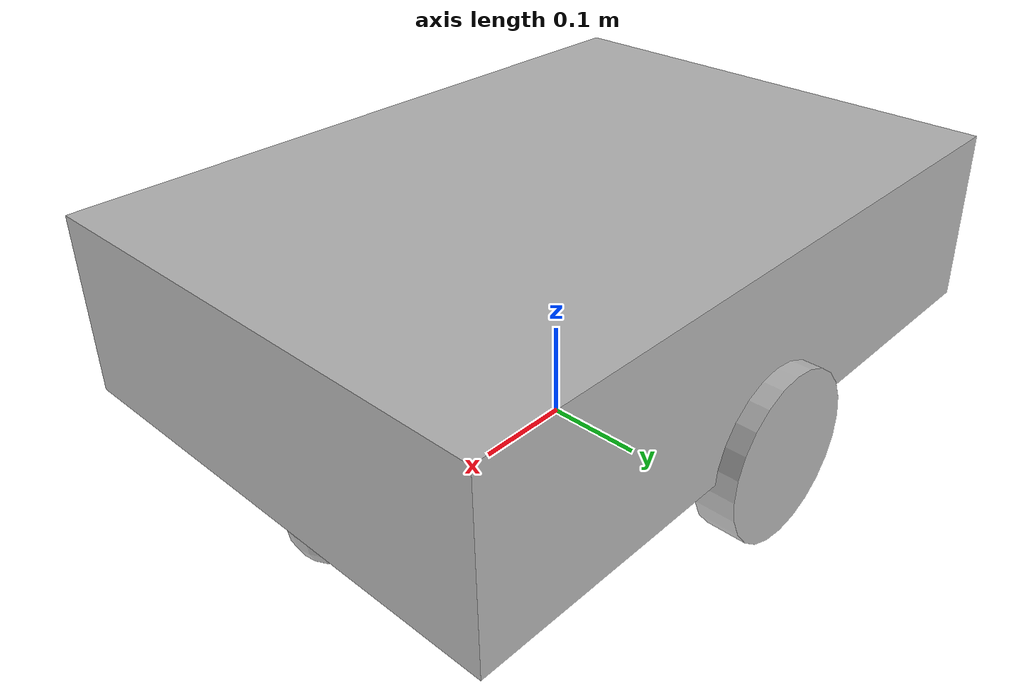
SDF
<?xml version="1.0"?>
<sdf version="1.9">
  <model name="hoverbot">
    <static>false</static>

    <link name="base_link">
      <pose>0 0 0.18 0 0 0</pose>
      <inertial>
        <mass>15</mass>
        <inertia><ixx>0.353</ixx><iyy>0.653</iyy><izz>0.925</izz>
                 <ixy>0</ixy><ixz>0</ixz><iyz>0</iyz></inertia>
      </inertial>
      <collision name="collision">
        <geometry><box><size>0.7 0.5 0.18</size></box></geometry>
      </collision>
      <visual name="visual">
        <geometry><box><size>0.7 0.5 0.18</size></box></geometry>
      </visual>

      <collision name="caster_front">
        <pose>0.28 0 -0.135 0 0 0</pose>
        <geometry><sphere><radius>0.045</radius></sphere></geometry>
        <surface><friction><ode><mu>0.05</mu><mu2>0.05</mu2></ode></friction></surface>
      </collision>
      <visual name="caster_front_visual">
        <pose>0.28 0 -0.135 0 0 0</pose>
        <geometry><sphere><radius>0.045</radius></sphere></geometry>
      </visual>
      <collision name="caster_rear">
        <pose>-0.28 0 -0.135 0 0 0</pose>
        <geometry><sphere><radius>0.045</radius></sphere></geometry>
        <surface><friction><ode><mu>0.05</mu><mu2>0.05</mu2></ode></friction></surface>
      </collision>
      <visual name="caster_rear_visual">
        <pose>-0.28 0 -0.135 0 0 0</pose>
        <geometry><sphere><radius>0.045</radius></sphere></geometry>
      </visual>

      <sensor name="chassis_contact" type="contact">
        <always_on>true</always_on>
        <update_rate>50</update_rate>
        <topic>/model/hoverbot/contacts</topic>
        <contact><collision>collision</collision></contact>
      </sensor>
    </link>

    <link name="left_wheel">
      <pose>0 0.25 0.0825 -1.5707963 0 0</pose>
      <inertial>
        <mass>1</mass>
        <inertia><ixx>0.0018349</ixx><iyy>0.0018349</iyy><izz>0.0034031</izz>
                 <ixy>0</ixy><ixz>0</ixz><iyz>0</iyz></inertia>
      </inertial>
      <collision name="collision">
        <geometry><cylinder><radius>0.0825</radius><length>0.04</length></cylinder></geometry>
        <surface><friction><ode><mu>0.5</mu><mu2>0.5</mu2></ode></friction></surface>
      </collision>
      <visual name="visual">
        <geometry><cylinder><radius>0.0825</radius><length>0.04</length></cylinder></geometry>
      </visual>
    </link>
    <link name="right_wheel">
      <pose>0 -0.25 0.0825 -1.5707963 0 0</pose>
      <inertial>
        <mass>1</mass>
        <inertia><ixx>0.0018349</ixx><iyy>0.0018349</iyy><izz>0.0034031</izz>
                 <ixy>0</ixy><ixz>0</ixz><iyz>0</iyz></inertia>
      </inertial>
      <collision name="collision">
        <geometry><cylinder><radius>0.0825</radius><length>0.04</length></cylinder></geometry>
        <surface><friction><ode><mu>0.5</mu><mu2>0.5</mu2></ode></friction></surface>
      </collision>
      <visual name="visual">
        <geometry><cylinder><radius>0.0825</radius><length>0.04</length></cylinder></geometry>
      </visual>
    </link>

    <joint name="left_wheel_joint" type="revolute">
      <parent>base_link</parent><child>left_wheel</child>
      <axis><xyz>0 0 1</xyz><limit><lower>-1e16</lower><upper>1e16</upper></limit></axis>
    </joint>
    <joint name="right_wheel_joint" type="revolute">
      <parent>base_link</parent><child>right_wheel</child>
      <axis><xyz>0 0 1</xyz><limit><lower>-1e16</lower><upper>1e16</upper></limit></axis>
    </joint>

    <plugin filename="gz-sim-diff-drive-system" name="gz::sim::systems::DiffDrive">
      <left_joint>left_wheel_joint</left_joint>
      <right_joint>right_wheel_joint</right_joint>
      <wheel_separation>0.5</wheel_separation>
      <wheel_radius>0.0825</wheel_radius>
      <topic>/model/hoverbot/cmd_vel</topic>
      <odom_topic>/model/hoverbot/wheel_odometry</odom_topic>
      <frame_id>odom</frame_id>
      <child_frame_id>base_link</child_frame_id>
      <odom_publish_frequency>50</odom_publish_frequency>
    </plugin>

    <plugin filename="gz-sim-odometry-publisher-system"
            name="gz::sim::systems::OdometryPublisher">
      <odom_frame>sim_world</odom_frame>
      <robot_base_frame>base_link</robot_base_frame>
      <odom_topic>/model/hoverbot/ground_truth</odom_topic>
      <odom_publish_frequency>50</odom_publish_frequency>
      <dimensions>2</dimensions>
    </plugin>
  </model>
</sdf>
